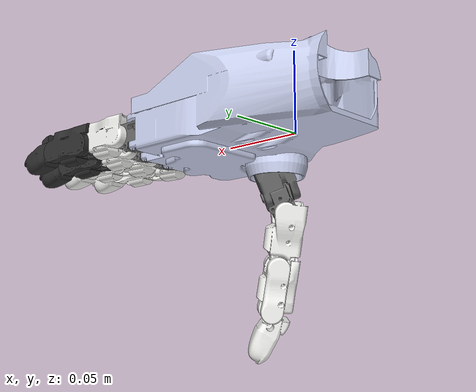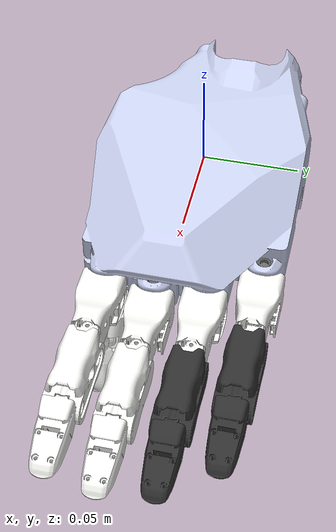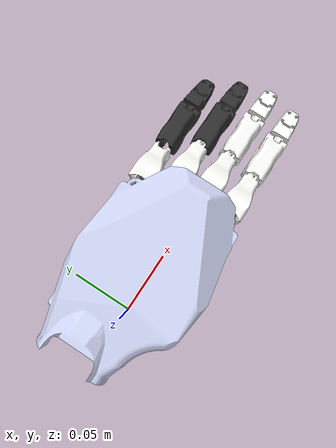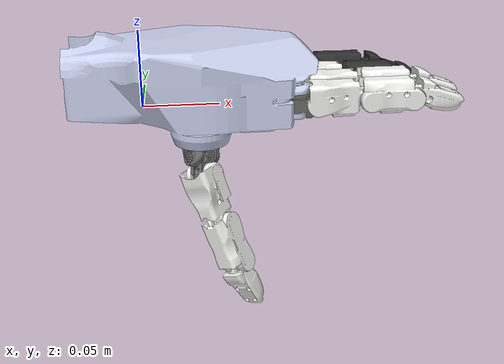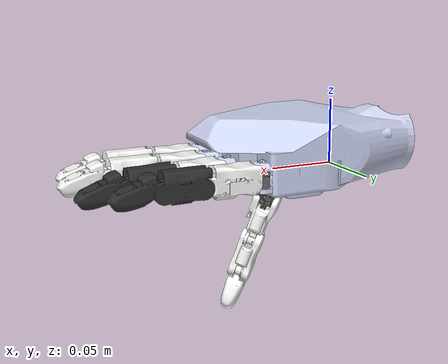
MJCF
<mujoco model="HKU Hand">
  <compiler angle="radian" meshdir="./meshes/"/>

  <asset>
    <mesh name="base_link" content_type="model/stl" file="base_link.STL"/>
    <mesh name="1-1_Link" content_type="model/stl" file="1-1_Link.STL"/>
    <mesh name="1-2_Link" content_type="model/stl" file="1-2_Link.STL"/>
    <mesh name="1-3_Link" content_type="model/stl" file="1-3_Link.STL"/>
    <mesh name="1-4_Link" content_type="model/stl" file="1-4_Link.STL"/>
    <mesh name="2-1_Link" content_type="model/stl" file="2-1_Link.STL"/>
    <mesh name="2-2_Link" content_type="model/stl" file="2-2_Link.STL"/>
    <mesh name="2-3_Link" content_type="model/stl" file="2-3_Link.STL"/>
    <mesh name="2-4_Link" content_type="model/stl" file="2-4_Link.STL"/>
    <mesh name="3-1_Link" content_type="model/stl" file="3-1_Link.STL"/>
    <mesh name="3-2_Link" content_type="model/stl" file="3-2_Link.STL"/>
    <mesh name="3-3_Link" content_type="model/stl" file="3-3_Link.STL"/>
    <mesh name="3-4_Link" content_type="model/stl" file="3-4_Link.STL"/>
    <mesh name="4-1_Link" content_type="model/stl" file="4-1_Link.STL"/>
    <mesh name="4-2_Link" content_type="model/stl" file="4-2_Link.STL"/>
    <mesh name="4-3_Link" content_type="model/stl" file="4-3_Link.STL"/>
    <mesh name="4-4_Link" content_type="model/stl" file="4-4_Link.STL"/>
    <mesh name="5-1_Link" content_type="model/stl" file="5-1_Link.STL"/>
    <mesh name="5-2_Link" content_type="model/stl" file="5-2_Link.STL"/>
    <mesh name="5-3_Link" content_type="model/stl" file="5-3_Link.STL"/>
    <mesh name="5-4_Link" content_type="model/stl" file="5-4_Link.STL"/>
    <mesh name="5-5_Link" content_type="model/stl" file="5-5_Link.STL"/>
  </asset>

  <worldbody>
    <geom type="mesh" contype="0" conaffinity="0" group="1" density="0" rgba="0.792157 0.819608 0.933333 1" mesh="base_link"/>
    <geom type="mesh" rgba="0.792157 0.819608 0.933333 1" mesh="base_link"/>
    <body name="1-1_Link" pos="0.097499 -0.025791 0.0074875">
      <inertial pos="0.00666469 2.43312e-05 -0.00122359" quat="0.467688 0.527327 0.539243 0.460881" mass="0.0023023" diaginertia="1.1577e-07 9.93033e-08 6.6012e-08"/>
      <joint name="1-1" pos="0 0 0" axis="0 0 1" range="-0.8727 0.5236"/>
      <geom type="mesh" contype="0" conaffinity="0" group="1" density="0" rgba="0.407843 0.407843 0.407843 1" mesh="1-1_Link"/>
      <geom type="mesh" rgba="0.407843 0.407843 0.407843 1" mesh="1-1_Link"/>
      <body name="1-2_Link" pos="0.012725 0 -0.0014425" quat="0.707029 -0.707032 -0.0103852 -0.0103853">
        <inertial pos="0.0152742 -0.00198875 0.000229799" quat="0.412812 0.5608 0.440067 0.566949" mass="0.00692845" diaginertia="6.37703e-07 6.23146e-07 1.4913e-07"/>
        <joint name="1-2" pos="0 0 0" axis="0 0 1" range="0 1.5708"/>
        <geom type="mesh" contype="0" conaffinity="0" group="1" density="0" rgba="0.964706 0.964706 0.952941 1" mesh="1-2_Link"/>
        <geom type="mesh" rgba="0.964706 0.964706 0.952941 1" mesh="1-2_Link"/>
        <body name="1-3_Link" pos="0.035 0 0.0001495" quat="0.999922 0 0 0.0124532">
          <inertial pos="0.0135681 -0.00233323 -0.000158142" quat="0.58998 0.389036 0.58854 0.392678" mass="0.00699314" diaginertia="7.45987e-07 7.22226e-07 1.80145e-07"/>
          <joint name="1-3" pos="0 0 0" axis="0 0 1" range="0 1.4835"/>
          <geom type="mesh" contype="0" conaffinity="0" group="1" density="0" rgba="0.964706 0.964706 0.952941 1" mesh="1-3_Link"/>
          <geom type="mesh" rgba="0.964706 0.964706 0.952941 1" mesh="1-3_Link"/>
          <body name="1-4_Link" pos="0.028 0 -0.00029976" quat="1 0 0 -0.000343165">
            <inertial pos="0.0153967 0.000257997 0.000356415" quat="0.498879 0.49353 0.500335 0.507161" mass="0.00512412" diaginertia="4.21289e-07 3.83024e-07 1.13778e-07"/>
            <joint name="1-4" pos="0 0 0" axis="0 0 1" range="0 1.5708"/>
            <geom type="mesh" contype="0" conaffinity="0" group="1" density="0" rgba="0.964706 0.964706 0.952941 1" mesh="1-4_Link"/>
            <geom type="mesh" rgba="0.964706 0.964706 0.952941 1" mesh="1-4_Link"/>
          </body>
        </body>
      </body>
    </body>
    <body name="2-1_Link" pos="0.1025 -0.0017912 0.0074875">
      <inertial pos="0.00666469 2.43312e-05 -0.00122359" quat="0.467688 0.527327 0.539243 0.460881" mass="0.0023023" diaginertia="1.1577e-07 9.93033e-08 6.6012e-08"/>
      <joint name="2-1" pos="0 0 0" axis="0 0 1" range="-0.8727 0.8727"/>
      <geom type="mesh" contype="0" conaffinity="0" group="1" density="0" rgba="0.407843 0.407843 0.407843 1" mesh="2-1_Link"/>
      <geom type="mesh" rgba="0.407843 0.407843 0.407843 1" mesh="2-1_Link"/>
      <body name="2-2_Link" pos="0.012725 0 -0.0014425" quat="0.707105 -0.707108 0 0">
        <inertial pos="0.015016 -0.00236468 0.000505831" quat="0.414745 0.572046 0.425214 0.565635" mass="0.00712442" diaginertia="6.44373e-07 6.30803e-07 1.5035e-07"/>
        <joint name="2-2" pos="0 0 0" axis="0 0 1" range="0 1.5708"/>
        <geom type="mesh" contype="0" conaffinity="0" group="1" density="0" rgba="0.964706 0.964706 0.952941 1" mesh="2-2_Link"/>
        <geom type="mesh" rgba="0.964706 0.964706 0.952941 1" mesh="2-2_Link"/>
        <body name="2-3_Link" pos="0.034985 -0.0010281 0.0001495">
          <inertial pos="0.0135728 -0.00231653 0.000161557" quat="0.596306 0.38204 0.593193 0.382866" mass="0.0072524" diaginertia="7.7248e-07 7.49926e-07 1.81959e-07"/>
          <joint name="2-3" pos="0 0 0" axis="0 0 1" range="0 1.4835"/>
          <geom type="mesh" contype="0" conaffinity="0" group="1" density="0" rgba="0.964706 0.964706 0.952941 1" mesh="2-3_Link"/>
          <geom type="mesh" rgba="0.964706 0.964706 0.952941 1" mesh="2-3_Link"/>
          <body name="2-4_Link" pos="0.028 -0.00012529 -0.00029976">
            <inertial pos="0.0153978 0.000178622 0.000356415" quat="0.500186 0.494818 0.49906 0.505874" mass="0.00512412" diaginertia="4.21289e-07 3.83024e-07 1.13778e-07"/>
            <joint name="2-4" pos="0 0 0" axis="0 0 1" range="0 1.5708"/>
            <geom type="mesh" contype="0" conaffinity="0" group="1" density="0" rgba="0.964706 0.964706 0.952941 1" mesh="2-4_Link"/>
            <geom type="mesh" rgba="0.964706 0.964706 0.952941 1" mesh="2-4_Link"/>
          </body>
        </body>
      </body>
    </body>
    <body name="3-1_Link" pos="0.097499 0.022209 0.0074875">
      <inertial pos="0.00666469 2.43312e-05 -0.00122359" quat="0.467688 0.527327 0.539243 0.460881" mass="0.0023023" diaginertia="1.1577e-07 9.93033e-08 6.6012e-08"/>
      <joint name="3-1" pos="0 0 0" axis="0 0 1" range="-0.5236 1.1345"/>
      <geom type="mesh" contype="0" conaffinity="0" group="1" density="0" rgba="0.407843 0.407843 0.407843 1" mesh="3-1_Link"/>
      <geom type="mesh" rgba="0.407843 0.407843 0.407843 1" mesh="3-1_Link"/>
      <body name="3-2_Link" pos="0.012725 0 -0.0014425" quat="0.707105 -0.707108 0 0">
        <inertial pos="0.0152848 -0.00190554 0.0002298" quat="0.411267 0.559599 0.441592 0.568071" mass="0.00692845" diaginertia="6.37703e-07 6.23146e-07 1.4913e-07"/>
        <joint name="3-2" pos="0 0 0" axis="0 0 1" range="0 1.5708"/>
        <geom type="mesh" contype="0" conaffinity="0" group="1" density="0" rgba="0.964706 0.964706 0.952941 1" mesh="3-2_Link"/>
        <geom type="mesh" rgba="0.964706 0.964706 0.952941 1" mesh="3-2_Link"/>
        <body name="3-3_Link" pos="0.034999 0.00019049 0.0001495">
          <inertial pos="0.0136452 -0.0018426 0.000161558" quat="0.58955 0.371654 0.599754 0.39319" mass="0.0072524" diaginertia="7.7248e-07 7.49926e-07 1.81959e-07"/>
          <joint name="3-3" pos="0 0 0" axis="0 0 1" range="0 1.4835"/>
          <geom type="mesh" contype="0" conaffinity="0" group="1" density="0" rgba="0.180392 0.180392 0.180392 1" mesh="3-3_Link"/>
          <geom type="mesh" rgba="0.180392 0.180392 0.180392 1" mesh="3-3_Link"/>
          <body name="3-4_Link" pos="0.027987 0.00084958 -0.00029976">
            <inertial pos="0.0153822 0.000714575 0.000356412" quat="0.491302 0.486054 0.507601 0.514505" mass="0.00512413" diaginertia="4.21289e-07 3.83024e-07 1.13778e-07"/>
            <joint name="3-4" pos="0 0 0" axis="0 0 1" range="0 1.5708"/>
            <geom type="mesh" contype="0" conaffinity="0" group="1" density="0" rgba="0.180392 0.180392 0.180392 1" mesh="3-4_Link"/>
            <geom type="mesh" rgba="0.180392 0.180392 0.180392 1" mesh="3-4_Link"/>
          </body>
        </body>
      </body>
    </body>
    <body name="4-1_Link" pos="0.081999 0.046209 0.0074875">
      <inertial pos="0.00666469 2.43312e-05 -0.00122359" quat="0.467688 0.527327 0.539243 0.460881" mass="0.0023023" diaginertia="1.1577e-07 9.93033e-08 6.6012e-08"/>
      <joint name="4-1" pos="0 0 0" axis="0 0 1" range="-0.3491 1.1345"/>
      <geom type="mesh" contype="0" conaffinity="0" group="1" density="0" rgba="0.407843 0.407843 0.407843 1" mesh="4-1_Link"/>
      <geom type="mesh" rgba="0.407843 0.407843 0.407843 1" mesh="4-1_Link"/>
      <body name="4-2_Link" pos="0.012725 0 -0.0014425" quat="0.707105 -0.707108 0 0">
        <inertial pos="0.0113498 -0.00233987 0.000254398" quat="0.486714 0.532698 0.453054 0.523531" mass="0.00481072" diaginertia="3.82059e-07 3.61957e-07 1.13652e-07"/>
        <joint name="4-2" pos="0 0 0" axis="0 0 1" range="0 1.5708"/>
        <geom type="mesh" contype="0" conaffinity="0" group="1" density="0" rgba="0.964706 0.964706 0.952941 1" mesh="4-2_Link"/>
        <geom type="mesh" rgba="0.964706 0.964706 0.952941 1" mesh="4-2_Link"/>
        <body name="4-3_Link" pos="0.034985 -0.0010281 0.0001495">
          <inertial pos="0.0135728 -0.00231653 0.000161557" quat="0.596306 0.38204 0.593193 0.382866" mass="0.0072524" diaginertia="7.7248e-07 7.49926e-07 1.81959e-07"/>
          <joint name="4-3" pos="0 0 0" axis="0 0 1" range="0 1.4835"/>
          <geom type="mesh" contype="0" conaffinity="0" group="1" density="0" rgba="0.180392 0.180392 0.180392 1" mesh="4-3_Link"/>
          <geom type="mesh" rgba="0.180392 0.180392 0.180392 1" mesh="4-3_Link"/>
          <body name="4-4_Link" pos="0.028 -0.00012529 -0.00029976">
            <inertial pos="0.0153978 0.000178623 0.000356414" quat="0.500186 0.494817 0.499061 0.505873" mass="0.00512413" diaginertia="4.21289e-07 3.83024e-07 1.13778e-07"/>
            <joint name="4-4" pos="0 0 0" axis="0 0 1" range="0 1.5708"/>
            <geom type="mesh" contype="0" conaffinity="0" group="1" density="0" rgba="0.180392 0.180392 0.180392 1" mesh="4-4_Link"/>
            <geom type="mesh" rgba="0.180392 0.180392 0.180392 1" mesh="4-4_Link"/>
          </body>
        </body>
      </body>
    </body>
    <body name="5-1_Link" pos="0.036402 -0.026652 0.010947" quat="0.36464 0 0 -0.931149">
      <inertial pos="-0.00146256 -0.00094268 -0.0162484" quat="0.990109 -0.0652249 -0.118439 -0.0374444" mass="0.0132709" diaginertia="1.54423e-06 1.33033e-06 7.49288e-07"/>
      <joint name="5-1" pos="0 0 0" axis="0 0 1" range="-1.0308 0.54"/>
      <geom type="mesh" contype="0" conaffinity="0" group="1" density="0" rgba="0.407843 0.407843 0.407843 1" mesh="5-1_Link"/>
      <geom type="mesh" rgba="0.407843 0.407843 0.407843 1" mesh="5-1_Link"/>
      <body name="5-2_Link" pos="0.0016159 0.0014636 -0.035499" quat="0.81419 0.105825 0.552997 0.141736">
        <inertial pos="0.00663321 9.64456e-05 -0.00116963" quat="0.442606 0.537163 0.56195 0.446953" mass="0.00220881" diaginertia="1.10461e-07 9.40841e-08 6.24743e-08"/>
        <joint name="5-2" pos="0 0 0" axis="0 0 1" range="-1.0472 1.0472"/>
        <geom type="mesh" contype="0" conaffinity="0" group="1" density="0" rgba="0.407843 0.407843 0.407843 1" mesh="5-2_Link"/>
        <geom type="mesh" rgba="0.407843 0.407843 0.407843 1" mesh="5-2_Link"/>
        <body name="5-3_Link" pos="0.012725 0 -0.0014425" quat="0.686978 -0.68698 0.167511 0.167511">
          <inertial pos="0.0150791 -0.00192264 0.00050579" quat="0.40639 0.56574 0.43357 0.571667" mass="0.00712436" diaginertia="6.44374e-07 6.30805e-07 1.5035e-07"/>
          <joint name="5-3" pos="0 0 0" axis="0 0 1" range="0 1.5708"/>
          <geom type="mesh" contype="0" conaffinity="0" group="1" density="0" rgba="0.964706 0.964706 0.952941 1" mesh="5-3_Link"/>
          <geom type="mesh" rgba="0.964706 0.964706 0.952941 1" mesh="5-3_Link"/>
          <body name="5-4_Link" pos="0.035 0 0.0001495" quat="0.995399 0 0 0.0958178">
            <inertial pos="0.013019 -0.00448263 0.000161553" quat="0.625423 0.428936 0.56022 0.333188" mass="0.00725239" diaginertia="7.72478e-07 7.49925e-07 1.81959e-07"/>
            <joint name="5-4" pos="0 0 0" axis="0 0 1" range="0 1.4835"/>
            <geom type="mesh" contype="0" conaffinity="0" group="1" density="0" rgba="0.964706 0.964706 0.952941 1" mesh="5-4_Link"/>
            <geom type="mesh" rgba="0.964706 0.964706 0.952941 1" mesh="5-4_Link"/>
            <body name="5-5_Link" pos="0.02761 -0.0046551 -0.00029976">
              <inertial pos="0.0152236 -0.00231576 0.000356508" quat="0.539604 0.533703 0.457244 0.463591" mass="0.00512406" diaginertia="4.2128e-07 3.83019e-07 1.13776e-07"/>
              <joint name="5-5" pos="0 0 0" axis="0 0 1" range="0 1.5708"/>
              <geom type="mesh" contype="0" conaffinity="0" group="1" density="0" rgba="0.964706 0.964706 0.952941 1" mesh="5-5_Link"/>
              <geom type="mesh" rgba="0.964706 0.964706 0.952941 1" mesh="5-5_Link"/>
            </body>
          </body>
        </body>
      </body>
    </body>
  </worldbody>
</mujoco>
